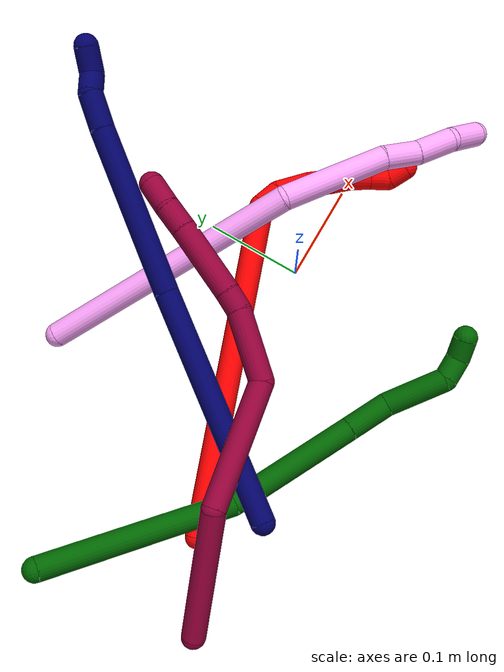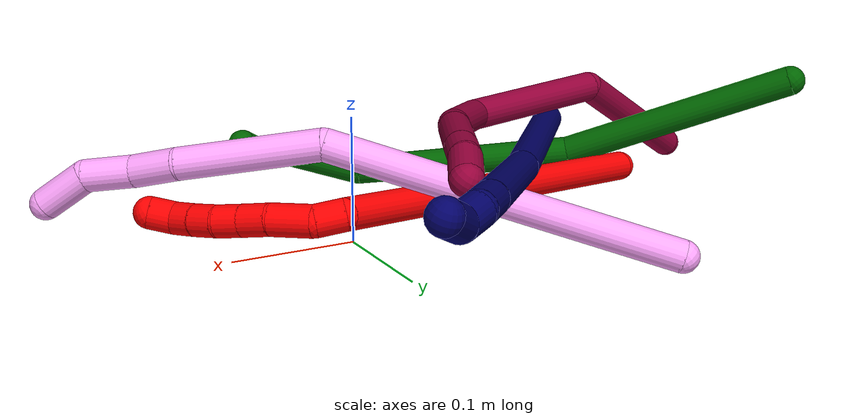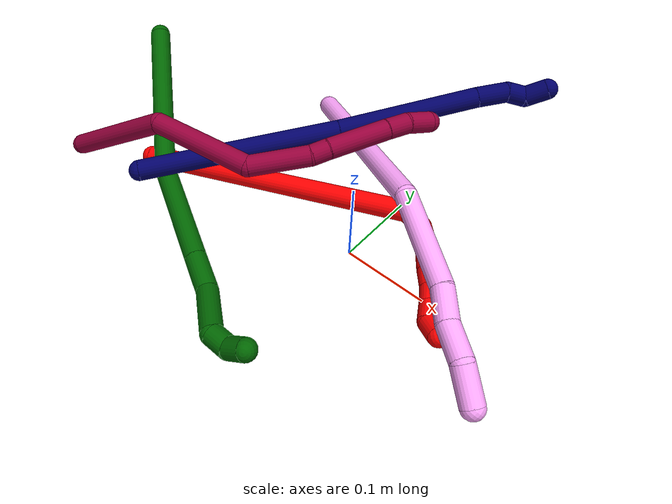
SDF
<sdf version="1.7">
 <world name="default">
  <model name="2">
   <static>0</static>
   <link name="2">
    <collision name="collision-cylinder-e_1_1_4">
     <pose>0.116093 0.066121 0.104433 -0.564434 0.754066 -0.22863</pose>
     <geometry><cylinder><radius>0.0125</radius><length>0.339151</length></cylinder></geometry>
     <surface>
      <friction><ode><mu>1.16</mu><mu2>1.16</mu2><slip1>0</slip1><slip2>0</slip2></ode></friction>
      <contact><ode><kp>1e+06</kp><kd>1</kd><max_vel>0</max_vel><min_depth>0.001</min_depth></ode></contact>
     </surface>
    </collision>
    <visual name="visual-cylinder-e_1_1_4">
     <pose>0.116093 0.066121 0.104433 -0.564434 0.754066 -0.22863</pose>
     <geometry><cylinder><radius>0.0125</radius><length>0.339151</length></cylinder></geometry>
     <material><ambient>1 0 0 1</ambient></material>
    </visual>
    <collision name="collision-cylinder-e_2_4_5">
     <pose>0.242178 0.129543 0.213977 0.486071 1.04643 0.284113</pose>
     <geometry><cylinder><radius>0.0125</radius><length>0.023086</length></cylinder></geometry>
     <surface>
      <friction><ode><mu>1.16</mu><mu2>1.16</mu2><slip1>0</slip1><slip2>0</slip2></ode></friction>
      <contact><ode><kp>1e+06</kp><kd>1</kd><max_vel>0</max_vel><min_depth>0.001</min_depth></ode></contact>
     </surface>
    </collision>
    <visual name="visual-cylinder-e_2_4_5">
     <pose>0.242178 0.129543 0.213977 0.486071 1.04643 0.284113</pose>
     <geometry><cylinder><radius>0.0125</radius><length>0.023086</length></cylinder></geometry>
     <material><ambient>1 0 0 1</ambient></material>
    </visual>
    <collision name="collision-cylinder-e_3_5_6">
     <pose>0.262906 0.11622 0.226399 0.967955 0.694199 0.375835</pose>
     <geometry><cylinder><radius>0.0125</radius><length>0.03356</length></cylinder></geometry>
     <surface>
      <friction><ode><mu>1.16</mu><mu2>1.16</mu2><slip1>0</slip1><slip2>0</slip2></ode></friction>
      <contact><ode><kp>1e+06</kp><kd>1</kd><max_vel>0</max_vel><min_depth>0.001</min_depth></ode></contact>
     </surface>
    </collision>
    <visual name="visual-cylinder-e_3_5_6">
     <pose>0.262906 0.11622 0.226399 0.967955 0.694199 0.375835</pose>
     <geometry><cylinder><radius>0.0125</radius><length>0.03356</length></cylinder></geometry>
     <material><ambient>1 0 0 1</ambient></material>
    </visual>
    <collision name="collision-cylinder-e_4_6_7">
     <pose>0.280925 0.097233 0.237087 1.18712 0.6794 0.468153</pose>
     <geometry><cylinder><radius>0.0125</radius><length>0.023186</length></cylinder></geometry>
     <surface>
      <friction><ode><mu>1.16</mu><mu2>1.16</mu2><slip1>0</slip1><slip2>0</slip2></ode></friction>
      <contact><ode><kp>1e+06</kp><kd>1</kd><max_vel>0</max_vel><min_depth>0.001</min_depth></ode></contact>
     </surface>
    </collision>
    <visual name="visual-cylinder-e_4_6_7">
     <pose>0.280925 0.097233 0.237087 1.18712 0.6794 0.468153</pose>
     <geometry><cylinder><radius>0.0125</radius><length>0.023186</length></cylinder></geometry>
     <material><ambient>1 0 0 1</ambient></material>
    </visual>
    <collision name="collision-cylinder-e_5_7_8">
     <pose>0.295036 0.081849 0.244081 1.09502 0.71272 0.446352</pose>
     <geometry><cylinder><radius>0.0125</radius><length>0.020879</length></cylinder></geometry>
     <surface>
      <friction><ode><mu>1.16</mu><mu2>1.16</mu2><slip1>0</slip1><slip2>0</slip2></ode></friction>
      <contact><ode><kp>1e+06</kp><kd>1</kd><max_vel>0</max_vel><min_depth>0.001</min_depth></ode></contact>
     </surface>
    </collision>
    <visual name="visual-cylinder-e_5_7_8">
     <pose>0.295036 0.081849 0.244081 1.09502 0.71272 0.446352</pose>
     <geometry><cylinder><radius>0.0125</radius><length>0.020879</length></cylinder></geometry>
     <material><ambient>1 0 0 1</ambient></material>
    </visual>
    <collision name="collision-cylinder-e_6_8_9">
     <pose>0.307267 0.066893 0.250591 1.22115 0.569334 0.403943</pose>
     <geometry><cylinder><radius>0.0125</radius><length>0.020055</length></cylinder></geometry>
     <surface>
      <friction><ode><mu>1.16</mu><mu2>1.16</mu2><slip1>0</slip1><slip2>0</slip2></ode></friction>
      <contact><ode><kp>1e+06</kp><kd>1</kd><max_vel>0</max_vel><min_depth>0.001</min_depth></ode></contact>
     </surface>
    </collision>
    <visual name="visual-cylinder-e_6_8_9">
     <pose>0.307267 0.066893 0.250591 1.22115 0.569334 0.403943</pose>
     <geometry><cylinder><radius>0.0125</radius><length>0.020055</length></cylinder></geometry>
     <material><ambient>1 0 0 1</ambient></material>
    </visual>
    <collision name="collision-cylinder-e_7_9_10">
     <pose>0.317571 0.050666 0.256226 1.25149 0.5111 0.373191</pose>
     <geometry><cylinder><radius>0.0125</radius><length>0.020027</length></cylinder></geometry>
     <surface>
      <friction><ode><mu>1.16</mu><mu2>1.16</mu2><slip1>0</slip1><slip2>0</slip2></ode></friction>
      <contact><ode><kp>1e+06</kp><kd>1</kd><max_vel>0</max_vel><min_depth>0.001</min_depth></ode></contact>
     </surface>
    </collision>
    <visual name="visual-cylinder-e_7_9_10">
     <pose>0.317571 0.050666 0.256226 1.25149 0.5111 0.373191</pose>
     <geometry><cylinder><radius>0.0125</radius><length>0.020027</length></cylinder></geometry>
     <material><ambient>1 0 0 1</ambient></material>
    </visual>
    <collision name="collision-cylinder-e_8_10_2">
     <pose>0.328228 0.038142 0.266003 0.541525 0.611713 0.174853</pose>
     <geometry><cylinder><radius>0.0125</radius><length>0.020055</length></cylinder></geometry>
     <surface>
      <friction><ode><mu>1.16</mu><mu2>1.16</mu2><slip1>0</slip1><slip2>0</slip2></ode></friction>
      <contact><ode><kp>1e+06</kp><kd>1</kd><max_vel>0</max_vel><min_depth>0.001</min_depth></ode></contact>
     </surface>
    </collision>
    <visual name="visual-cylinder-e_8_10_2">
     <pose>0.328228 0.038142 0.266003 0.541525 0.611713 0.174853</pose>
     <geometry><cylinder><radius>0.0125</radius><length>0.020055</length></cylinder></geometry>
     <material><ambient>1 0 0 1</ambient></material>
    </visual>
    <collision name="collision-sphere-2">
     <pose>0.333986 0.033911 0.273037 0 -0 0</pose>
     <geometry><sphere><radius>0.0125</radius></sphere></geometry>
     <surface>
      <friction><ode><mu>1.16</mu><mu2>1.16</mu2><slip1>0</slip1><slip2>0</slip2></ode></friction>
      <contact><ode><kp>1e+06</kp><kd>1</kd><max_vel>0</max_vel><min_depth>0.001</min_depth></ode></contact>
     </surface>
    </collision>
    <visual name="visual-sphere-2">
     <pose>0.333986 0.033911 0.273037 0 -0 0</pose>
     <geometry><sphere><radius>0.0125</radius></sphere></geometry>
     <material><ambient>1 0 0 1</ambient></material>
    </visual>
    <collision name="collision-sphere-10">
     <pose>0.322469 0.042374 0.258968 0 -0 0</pose>
     <geometry><sphere><radius>0.0125</radius></sphere></geometry>
     <surface>
      <friction><ode><mu>1.16</mu><mu2>1.16</mu2><slip1>0</slip1><slip2>0</slip2></ode></friction>
      <contact><ode><kp>1e+06</kp><kd>1</kd><max_vel>0</max_vel><min_depth>0.001</min_depth></ode></contact>
     </surface>
    </collision>
    <visual name="visual-sphere-10">
     <pose>0.322469 0.042374 0.258968 0 -0 0</pose>
     <geometry><sphere><radius>0.0125</radius></sphere></geometry>
     <material><ambient>1 0 0 1</ambient></material>
    </visual>
    <collision name="collision-sphere-9">
     <pose>0.312673 0.058959 0.253485 0 -0 0</pose>
     <geometry><sphere><radius>0.0125</radius></sphere></geometry>
     <surface>
      <friction><ode><mu>1.16</mu><mu2>1.16</mu2><slip1>0</slip1><slip2>0</slip2></ode></friction>
      <contact><ode><kp>1e+06</kp><kd>1</kd><max_vel>0</max_vel><min_depth>0.001</min_depth></ode></contact>
     </surface>
    </collision>
    <visual name="visual-sphere-9">
     <pose>0.312673 0.058959 0.253485 0 -0 0</pose>
     <geometry><sphere><radius>0.0125</radius></sphere></geometry>
     <material><ambient>1 0 0 1</ambient></material>
    </visual>
    <collision name="collision-sphere-4">
     <pose>0.232186 0.132243 0.208867 0 -0 0</pose>
     <geometry><sphere><radius>0.0125</radius></sphere></geometry>
     <surface>
      <friction><ode><mu>1.16</mu><mu2>1.16</mu2><slip1>0</slip1><slip2>0</slip2></ode></friction>
      <contact><ode><kp>1e+06</kp><kd>1</kd><max_vel>0</max_vel><min_depth>0.001</min_depth></ode></contact>
     </surface>
    </collision>
    <visual name="visual-sphere-4">
     <pose>0.232186 0.132243 0.208867 0 -0 0</pose>
     <geometry><sphere><radius>0.0125</radius></sphere></geometry>
     <material><ambient>1 0 0 1</ambient></material>
    </visual>
    <collision name="collision-sphere-1">
     <geometry><sphere><radius>0.0125</radius></sphere></geometry>
     <surface>
      <friction><ode><mu>1.16</mu><mu2>1.16</mu2><slip1>0</slip1><slip2>0</slip2></ode></friction>
      <contact><ode><kp>1e+06</kp><kd>1</kd><max_vel>0</max_vel><min_depth>0.001</min_depth></ode></contact>
     </surface>
    </collision>
    <visual name="visual-sphere-1">
     <geometry><sphere><radius>0.0125</radius></sphere></geometry>
     <material><ambient>1 0 0 1</ambient></material>
    </visual>
    <collision name="collision-sphere-8">
     <pose>0.301862 0.074828 0.247698 0 -0 0</pose>
     <geometry><sphere><radius>0.0125</radius></sphere></geometry>
     <surface>
      <friction><ode><mu>1.16</mu><mu2>1.16</mu2><slip1>0</slip1><slip2>0</slip2></ode></friction>
      <contact><ode><kp>1e+06</kp><kd>1</kd><max_vel>0</max_vel><min_depth>0.001</min_depth></ode></contact>
     </surface>
    </collision>
    <visual name="visual-sphere-8">
     <pose>0.301862 0.074828 0.247698 0 -0 0</pose>
     <geometry><sphere><radius>0.0125</radius></sphere></geometry>
     <material><ambient>1 0 0 1</ambient></material>
    </visual>
    <collision name="collision-sphere-5">
     <pose>0.25217 0.126843 0.219086 0 -0 0</pose>
     <geometry><sphere><radius>0.0125</radius></sphere></geometry>
     <surface>
      <friction><ode><mu>1.16</mu><mu2>1.16</mu2><slip1>0</slip1><slip2>0</slip2></ode></friction>
      <contact><ode><kp>1e+06</kp><kd>1</kd><max_vel>0</max_vel><min_depth>0.001</min_depth></ode></contact>
     </surface>
    </collision>
    <visual name="visual-sphere-5">
     <pose>0.25217 0.126843 0.219086 0 -0 0</pose>
     <geometry><sphere><radius>0.0125</radius></sphere></geometry>
     <material><ambient>1 0 0 1</ambient></material>
    </visual>
    <collision name="collision-sphere-6">
     <pose>0.273641 0.105596 0.233711 0 -0 0</pose>
     <geometry><sphere><radius>0.0125</radius></sphere></geometry>
     <surface>
      <friction><ode><mu>1.16</mu><mu2>1.16</mu2><slip1>0</slip1><slip2>0</slip2></ode></friction>
      <contact><ode><kp>1e+06</kp><kd>1</kd><max_vel>0</max_vel><min_depth>0.001</min_depth></ode></contact>
     </surface>
    </collision>
    <visual name="visual-sphere-6">
     <pose>0.273641 0.105596 0.233711 0 -0 0</pose>
     <geometry><sphere><radius>0.0125</radius></sphere></geometry>
     <material><ambient>1 0 0 1</ambient></material>
    </visual>
    <collision name="collision-sphere-7">
     <pose>0.28821 0.08887 0.240463 0 -0 0</pose>
     <geometry><sphere><radius>0.0125</radius></sphere></geometry>
     <surface>
      <friction><ode><mu>1.16</mu><mu2>1.16</mu2><slip1>0</slip1><slip2>0</slip2></ode></friction>
      <contact><ode><kp>1e+06</kp><kd>1</kd><max_vel>0</max_vel><min_depth>0.001</min_depth></ode></contact>
     </surface>
    </collision>
    <visual name="visual-sphere-7">
     <pose>0.28821 0.08887 0.240463 0 -0 0</pose>
     <geometry><sphere><radius>0.0125</radius></sphere></geometry>
     <material><ambient>1 0 0 1</ambient></material>
    </visual>
    <inertial>
     <pose>0.171131 0.072801 0.148083 0 -0 0</pose>
     <mass>0.5</mass>
     <inertia>
      <ixx>0.001818</ixx>
      <ixy>0</ixy>
      <ixz>0</ixz>
      <iyy>0.002434</iyy>
      <iyz>0</iyz>
      <izz>-0.003486</izz>
     </inertia>
    </inertial>
   </link>
   <pose>-0.28526 -0.05057 0.011489 0.027345 0.635959 -0.049201</pose>
  </model>
  <model name="4">
   <static>0</static>
   <link name="4">
    <collision name="collision-cylinder-e_1_1_4">
     <pose>0.10734 -0.066208 -0.052752 2.24356 0.903017 1.57716</pose>
     <geometry><cylinder><radius>0.0125</radius><length>0.27341</length></cylinder></geometry>
     <surface>
      <friction><ode><mu>1.16</mu><mu2>1.16</mu2><slip1>0</slip1><slip2>0</slip2></ode></friction>
      <contact><ode><kp>1e+06</kp><kd>1</kd><max_vel>0</max_vel><min_depth>0.001</min_depth></ode></contact>
     </surface>
    </collision>
    <visual name="visual-cylinder-e_1_1_4">
     <pose>0.10734 -0.066208 -0.052752 2.24356 0.903017 1.57716</pose>
     <geometry><cylinder><radius>0.0125</radius><length>0.27341</length></cylinder></geometry>
     <material><ambient>1 0.65098 0.996078 1</ambient></material>
    </visual>
    <collision name="collision-cylinder-e_2_4_5">
     <pose>0.238784 -0.169364 -0.139248 2.31091 0.448898 0.955386</pose>
     <geometry><cylinder><radius>0.0125</radius><length>0.111083</length></cylinder></geometry>
     <surface>
      <friction><ode><mu>1.16</mu><mu2>1.16</mu2><slip1>0</slip1><slip2>0</slip2></ode></friction>
      <contact><ode><kp>1e+06</kp><kd>1</kd><max_vel>0</max_vel><min_depth>0.001</min_depth></ode></contact>
     </surface>
    </collision>
    <visual name="visual-cylinder-e_2_4_5">
     <pose>0.238784 -0.169364 -0.139248 2.31091 0.448898 0.955386</pose>
     <geometry><cylinder><radius>0.0125</radius><length>0.111083</length></cylinder></geometry>
     <material><ambient>1 0.65098 0.996078 1</ambient></material>
    </visual>
    <collision name="collision-cylinder-e_3_5_6">
     <pose>0.268851 -0.221294 -0.182131 2.11847 0.327551 0.572546</pose>
     <geometry><cylinder><radius>0.0125</radius><length>0.037068</length></cylinder></geometry>
     <surface>
      <friction><ode><mu>1.16</mu><mu2>1.16</mu2><slip1>0</slip1><slip2>0</slip2></ode></friction>
      <contact><ode><kp>1e+06</kp><kd>1</kd><max_vel>0</max_vel><min_depth>0.001</min_depth></ode></contact>
     </surface>
    </collision>
    <visual name="visual-cylinder-e_3_5_6">
     <pose>0.268851 -0.221294 -0.182131 2.11847 0.327551 0.572546</pose>
     <geometry><cylinder><radius>0.0125</radius><length>0.037068</length></cylinder></geometry>
     <material><ambient>1 0.65098 0.996078 1</ambient></material>
    </visual>
    <collision name="collision-cylinder-e_4_6_7">
     <pose>0.283702 -0.249367 -0.202566 2.28276 0.474772 0.972175</pose>
     <geometry><cylinder><radius>0.0125</radius><length>0.038885</length></cylinder></geometry>
     <surface>
      <friction><ode><mu>1.16</mu><mu2>1.16</mu2><slip1>0</slip1><slip2>0</slip2></ode></friction>
      <contact><ode><kp>1e+06</kp><kd>1</kd><max_vel>0</max_vel><min_depth>0.001</min_depth></ode></contact>
     </surface>
    </collision>
    <visual name="visual-cylinder-e_4_6_7">
     <pose>0.283702 -0.249367 -0.202566 2.28276 0.474772 0.972175</pose>
     <geometry><cylinder><radius>0.0125</radius><length>0.038885</length></cylinder></geometry>
     <material><ambient>1 0.65098 0.996078 1</ambient></material>
    </visual>
    <collision name="collision-cylinder-e_5_7_2">
     <pose>0.292588 -0.275829 -0.228436 2.39919 -5.1e-05 -0.000131</pose>
     <geometry><cylinder><radius>0.0125</radius><length>0.039554</length></cylinder></geometry>
     <surface>
      <friction><ode><mu>1.16</mu><mu2>1.16</mu2><slip1>0</slip1><slip2>0</slip2></ode></friction>
      <contact><ode><kp>1e+06</kp><kd>1</kd><max_vel>0</max_vel><min_depth>0.001</min_depth></ode></contact>
     </surface>
    </collision>
    <visual name="visual-cylinder-e_5_7_2">
     <pose>0.292588 -0.275829 -0.228436 2.39919 -5.1e-05 -0.000131</pose>
     <geometry><cylinder><radius>0.0125</radius><length>0.039554</length></cylinder></geometry>
     <material><ambient>1 0.65098 0.996078 1</ambient></material>
    </visual>
    <collision name="collision-sphere-2">
     <pose>0.292587 -0.2892 -0.243009 0 -0 0</pose>
     <geometry><sphere><radius>0.0125</radius></sphere></geometry>
     <surface>
      <friction><ode><mu>1.16</mu><mu2>1.16</mu2><slip1>0</slip1><slip2>0</slip2></ode></friction>
      <contact><ode><kp>1e+06</kp><kd>1</kd><max_vel>0</max_vel><min_depth>0.001</min_depth></ode></contact>
     </surface>
    </collision>
    <visual name="visual-sphere-2">
     <pose>0.292587 -0.2892 -0.243009 0 -0 0</pose>
     <geometry><sphere><radius>0.0125</radius></sphere></geometry>
     <material><ambient>1 0.65098 0.996078 1</ambient></material>
    </visual>
    <collision name="collision-sphere-7">
     <pose>0.292589 -0.262459 -0.213863 0 -0 0</pose>
     <geometry><sphere><radius>0.0125</radius></sphere></geometry>
     <surface>
      <friction><ode><mu>1.16</mu><mu2>1.16</mu2><slip1>0</slip1><slip2>0</slip2></ode></friction>
      <contact><ode><kp>1e+06</kp><kd>1</kd><max_vel>0</max_vel><min_depth>0.001</min_depth></ode></contact>
     </surface>
    </collision>
    <visual name="visual-sphere-7">
     <pose>0.292589 -0.262459 -0.213863 0 -0 0</pose>
     <geometry><sphere><radius>0.0125</radius></sphere></geometry>
     <material><ambient>1 0.65098 0.996078 1</ambient></material>
    </visual>
    <collision name="collision-sphere-6">
     <pose>0.274814 -0.236276 -0.191268 0 -0 0</pose>
     <geometry><sphere><radius>0.0125</radius></sphere></geometry>
     <surface>
      <friction><ode><mu>1.16</mu><mu2>1.16</mu2><slip1>0</slip1><slip2>0</slip2></ode></friction>
      <contact><ode><kp>1e+06</kp><kd>1</kd><max_vel>0</max_vel><min_depth>0.001</min_depth></ode></contact>
     </surface>
    </collision>
    <visual name="visual-sphere-6">
     <pose>0.274814 -0.236276 -0.191268 0 -0 0</pose>
     <geometry><sphere><radius>0.0125</radius></sphere></geometry>
     <material><ambient>1 0.65098 0.996078 1</ambient></material>
    </visual>
    <collision name="collision-sphere-5">
     <pose>0.262888 -0.206312 -0.172993 0 -0 0</pose>
     <geometry><sphere><radius>0.0125</radius></sphere></geometry>
     <surface>
      <friction><ode><mu>1.16</mu><mu2>1.16</mu2><slip1>0</slip1><slip2>0</slip2></ode></friction>
      <contact><ode><kp>1e+06</kp><kd>1</kd><max_vel>0</max_vel><min_depth>0.001</min_depth></ode></contact>
     </surface>
    </collision>
    <visual name="visual-sphere-5">
     <pose>0.262888 -0.206312 -0.172993 0 -0 0</pose>
     <geometry><sphere><radius>0.0125</radius></sphere></geometry>
     <material><ambient>1 0.65098 0.996078 1</ambient></material>
    </visual>
    <collision name="collision-sphere-1">
     <geometry><sphere><radius>0.0125</radius></sphere></geometry>
     <surface>
      <friction><ode><mu>1.16</mu><mu2>1.16</mu2><slip1>0</slip1><slip2>0</slip2></ode></friction>
      <contact><ode><kp>1e+06</kp><kd>1</kd><max_vel>0</max_vel><min_depth>0.001</min_depth></ode></contact>
     </surface>
    </collision>
    <visual name="visual-sphere-1">
     <geometry><sphere><radius>0.0125</radius></sphere></geometry>
     <material><ambient>1 0.65098 0.996078 1</ambient></material>
    </visual>
    <collision name="collision-sphere-4">
     <pose>0.214681 -0.132416 -0.105504 0 -0 0</pose>
     <geometry><sphere><radius>0.0125</radius></sphere></geometry>
     <surface>
      <friction><ode><mu>1.16</mu><mu2>1.16</mu2><slip1>0</slip1><slip2>0</slip2></ode></friction>
      <contact><ode><kp>1e+06</kp><kd>1</kd><max_vel>0</max_vel><min_depth>0.001</min_depth></ode></contact>
     </surface>
    </collision>
    <visual name="visual-sphere-4">
     <pose>0.214681 -0.132416 -0.105504 0 -0 0</pose>
     <geometry><sphere><radius>0.0125</radius></sphere></geometry>
     <material><ambient>1 0.65098 0.996078 1</ambient></material>
    </visual>
    <inertial>
     <pose>0.176887 -0.13145 -0.107109 0 -0 0</pose>
     <mass>0.5</mass>
     <inertia>
      <ixx>0.001248</ixx>
      <ixy>0</ixy>
      <ixz>0</ixz>
      <iyy>0.002171</iyy>
      <iyz>0</iyz>
      <izz>-0.000499</izz>
     </inertia>
    </inertial>
   </link>
   <pose>-0.181424 0.177956 0.013205 0.521555 -0.934423 -0.323127</pose>
  </model>
  <model name="6">
   <static>0</static>
   <link name="6">
    <collision name="collision-cylinder-e_1_1_4">
     <pose>0.069162 -0.061053 0.040607 0.983869 0.756198 0.419451</pose>
     <geometry><cylinder><radius>0.0125</radius><length>0.201592</length></cylinder></geometry>
     <surface>
      <friction><ode><mu>1.16</mu><mu2>1.16</mu2><slip1>0</slip1><slip2>0</slip2></ode></friction>
      <contact><ode><kp>1e+06</kp><kd>1</kd><max_vel>0</max_vel><min_depth>0.001</min_depth></ode></contact>
     </surface>
    </collision>
    <visual name="visual-cylinder-e_1_1_4">
     <pose>0.069162 -0.061053 0.040607 0.983869 0.756198 0.419451</pose>
     <geometry><cylinder><radius>0.0125</radius><length>0.201592</length></cylinder></geometry>
     <material><ambient>0 0.392157 0.003922 1</ambient></material>
    </visual>
    <collision name="collision-cylinder-e_2_4_5">
     <pose>0.192009 -0.142121 0.120599 0.470176 0.882236 0.225218</pose>
     <geometry><cylinder><radius>0.0125</radius><length>0.13905</length></cylinder></geometry>
     <surface>
      <friction><ode><mu>1.16</mu><mu2>1.16</mu2><slip1>0</slip1><slip2>0</slip2></ode></friction>
      <contact><ode><kp>1e+06</kp><kd>1</kd><max_vel>0</max_vel><min_depth>0.001</min_depth></ode></contact>
     </surface>
    </collision>
    <visual name="visual-cylinder-e_2_4_5">
     <pose>0.192009 -0.142121 0.120599 0.470176 0.882236 0.225218</pose>
     <geometry><cylinder><radius>0.0125</radius><length>0.13905</length></cylinder></geometry>
     <material><ambient>0 0.392157 0.003922 1</ambient></material>
    </visual>
    <collision name="collision-cylinder-e_3_5_6">
     <pose>0.263452 -0.168478 0.173335 0.44347 0.876602 0.210551</pose>
     <geometry><cylinder><radius>0.0125</radius><length>0.046211</length></cylinder></geometry>
     <surface>
      <friction><ode><mu>1.16</mu><mu2>1.16</mu2><slip1>0</slip1><slip2>0</slip2></ode></friction>
      <contact><ode><kp>1e+06</kp><kd>1</kd><max_vel>0</max_vel><min_depth>0.001</min_depth></ode></contact>
     </surface>
    </collision>
    <visual name="visual-cylinder-e_3_5_6">
     <pose>0.263452 -0.168478 0.173335 0.44347 0.876602 0.210551</pose>
     <geometry><cylinder><radius>0.0125</radius><length>0.046211</length></cylinder></geometry>
     <material><ambient>0 0.392157 0.003922 1</ambient></material>
    </visual>
    <collision name="collision-cylinder-e_4_6_7">
     <pose>0.298412 -0.182414 0.213093 0.280007 0.559371 0.080907</pose>
     <geometry><cylinder><radius>0.0125</radius><length>0.064832</length></cylinder></geometry>
     <surface>
      <friction><ode><mu>1.16</mu><mu2>1.16</mu2><slip1>0</slip1><slip2>0</slip2></ode></friction>
      <contact><ode><kp>1e+06</kp><kd>1</kd><max_vel>0</max_vel><min_depth>0.001</min_depth></ode></contact>
     </surface>
    </collision>
    <visual name="visual-cylinder-e_4_6_7">
     <pose>0.298412 -0.182414 0.213093 0.280007 0.559371 0.080907</pose>
     <geometry><cylinder><radius>0.0125</radius><length>0.064832</length></cylinder></geometry>
     <material><ambient>0 0.392157 0.003922 1</ambient></material>
    </visual>
    <collision name="collision-cylinder-e_5_7_8">
     <pose>0.326549 -0.188284 0.244891 -0.309258 1.0931 -0.189092</pose>
     <geometry><cylinder><radius>0.0125</radius><length>0.024626</length></cylinder></geometry>
     <surface>
      <friction><ode><mu>1.16</mu><mu2>1.16</mu2><slip1>0</slip1><slip2>0</slip2></ode></friction>
      <contact><ode><kp>1e+06</kp><kd>1</kd><max_vel>0</max_vel><min_depth>0.001</min_depth></ode></contact>
     </surface>
    </collision>
    <visual name="visual-cylinder-e_5_7_8">
     <pose>0.326549 -0.188284 0.244891 -0.309258 1.0931 -0.189092</pose>
     <geometry><cylinder><radius>0.0125</radius><length>0.024626</length></cylinder></geometry>
     <material><ambient>0 0.392157 0.003922 1</ambient></material>
    </visual>
    <collision name="collision-cylinder-e_6_8_2">
     <pose>0.344257 -0.179725 0.257187 -0.780479 0.608818 -0.257037</pose>
     <geometry><cylinder><radius>0.0125</radius><length>0.023688</length></cylinder></geometry>
     <surface>
      <friction><ode><mu>1.16</mu><mu2>1.16</mu2><slip1>0</slip1><slip2>0</slip2></ode></friction>
      <contact><ode><kp>1e+06</kp><kd>1</kd><max_vel>0</max_vel><min_depth>0.001</min_depth></ode></contact>
     </surface>
    </collision>
    <visual name="visual-cylinder-e_6_8_2">
     <pose>0.344257 -0.179725 0.257187 -0.780479 0.608818 -0.257037</pose>
     <geometry><cylinder><radius>0.0125</radius><length>0.023688</length></cylinder></geometry>
     <material><ambient>0 0.392157 0.003922 1</ambient></material>
    </visual>
    <collision name="collision-sphere-2">
     <pose>0.351031 -0.172889 0.264091 0 -0 0</pose>
     <geometry><sphere><radius>0.0125</radius></sphere></geometry>
     <surface>
      <friction><ode><mu>1.16</mu><mu2>1.16</mu2><slip1>0</slip1><slip2>0</slip2></ode></friction>
      <contact><ode><kp>1e+06</kp><kd>1</kd><max_vel>0</max_vel><min_depth>0.001</min_depth></ode></contact>
     </surface>
    </collision>
    <visual name="visual-sphere-2">
     <pose>0.351031 -0.172889 0.264091 0 -0 0</pose>
     <geometry><sphere><radius>0.0125</radius></sphere></geometry>
     <material><ambient>0 0.392157 0.003922 1</ambient></material>
    </visual>
    <collision name="collision-sphere-4">
     <pose>0.138325 -0.122106 0.081214 0 -0 0</pose>
     <geometry><sphere><radius>0.0125</radius></sphere></geometry>
     <surface>
      <friction><ode><mu>1.16</mu><mu2>1.16</mu2><slip1>0</slip1><slip2>0</slip2></ode></friction>
      <contact><ode><kp>1e+06</kp><kd>1</kd><max_vel>0</max_vel><min_depth>0.001</min_depth></ode></contact>
     </surface>
    </collision>
    <visual name="visual-sphere-4">
     <pose>0.138325 -0.122106 0.081214 0 -0 0</pose>
     <geometry><sphere><radius>0.0125</radius></sphere></geometry>
     <material><ambient>0 0.392157 0.003922 1</ambient></material>
    </visual>
    <collision name="collision-sphere-1">
     <geometry><sphere><radius>0.0125</radius></sphere></geometry>
     <surface>
      <friction><ode><mu>1.16</mu><mu2>1.16</mu2><slip1>0</slip1><slip2>0</slip2></ode></friction>
      <contact><ode><kp>1e+06</kp><kd>1</kd><max_vel>0</max_vel><min_depth>0.001</min_depth></ode></contact>
     </surface>
    </collision>
    <visual name="visual-sphere-1">
     <geometry><sphere><radius>0.0125</radius></sphere></geometry>
     <material><ambient>0 0.392157 0.003922 1</ambient></material>
    </visual>
    <collision name="collision-sphere-8">
     <pose>0.337484 -0.186561 0.250283 0 -0 0</pose>
     <geometry><sphere><radius>0.0125</radius></sphere></geometry>
     <surface>
      <friction><ode><mu>1.16</mu><mu2>1.16</mu2><slip1>0</slip1><slip2>0</slip2></ode></friction>
      <contact><ode><kp>1e+06</kp><kd>1</kd><max_vel>0</max_vel><min_depth>0.001</min_depth></ode></contact>
     </surface>
    </collision>
    <visual name="visual-sphere-8">
     <pose>0.337484 -0.186561 0.250283 0 -0 0</pose>
     <geometry><sphere><radius>0.0125</radius></sphere></geometry>
     <material><ambient>0 0.392157 0.003922 1</ambient></material>
    </visual>
    <collision name="collision-sphere-5">
     <pose>0.245694 -0.162135 0.159983 0 -0 0</pose>
     <geometry><sphere><radius>0.0125</radius></sphere></geometry>
     <surface>
      <friction><ode><mu>1.16</mu><mu2>1.16</mu2><slip1>0</slip1><slip2>0</slip2></ode></friction>
      <contact><ode><kp>1e+06</kp><kd>1</kd><max_vel>0</max_vel><min_depth>0.001</min_depth></ode></contact>
     </surface>
    </collision>
    <visual name="visual-sphere-5">
     <pose>0.245694 -0.162135 0.159983 0 -0 0</pose>
     <geometry><sphere><radius>0.0125</radius></sphere></geometry>
     <material><ambient>0 0.392157 0.003922 1</ambient></material>
    </visual>
    <collision name="collision-sphere-6">
     <pose>0.281211 -0.174821 0.186688 0 -0 0</pose>
     <geometry><sphere><radius>0.0125</radius></sphere></geometry>
     <surface>
      <friction><ode><mu>1.16</mu><mu2>1.16</mu2><slip1>0</slip1><slip2>0</slip2></ode></friction>
      <contact><ode><kp>1e+06</kp><kd>1</kd><max_vel>0</max_vel><min_depth>0.001</min_depth></ode></contact>
     </surface>
    </collision>
    <visual name="visual-sphere-6">
     <pose>0.281211 -0.174821 0.186688 0 -0 0</pose>
     <geometry><sphere><radius>0.0125</radius></sphere></geometry>
     <material><ambient>0 0.392157 0.003922 1</ambient></material>
    </visual>
    <collision name="collision-sphere-7">
     <pose>0.315614 -0.190007 0.239499 0 -0 0</pose>
     <geometry><sphere><radius>0.0125</radius></sphere></geometry>
     <surface>
      <friction><ode><mu>1.16</mu><mu2>1.16</mu2><slip1>0</slip1><slip2>0</slip2></ode></friction>
      <contact><ode><kp>1e+06</kp><kd>1</kd><max_vel>0</max_vel><min_depth>0.001</min_depth></ode></contact>
     </surface>
    </collision>
    <visual name="visual-sphere-7">
     <pose>0.315614 -0.190007 0.239499 0 -0 0</pose>
     <geometry><sphere><radius>0.0125</radius></sphere></geometry>
     <material><ambient>0 0.392157 0.003922 1</ambient></material>
    </visual>
    <inertial>
     <pose>0.176718 -0.121151 0.117807 0 -0 0</pose>
     <mass>0.5</mass>
     <inertia>
      <ixx>0.000898</ixx>
      <ixy>0</ixy>
      <ixz>0</ixz>
      <iyy>0.000991</iyy>
      <iyz>0</iyz>
      <izz>-0.000163</izz>
     </inertia>
    </inertial>
   </link>
   <pose>-0.380191 0.058529 0.100299 0.719765 0.409127 0.161941</pose>
  </model>
  <model name="7">
   <static>0</static>
   <link name="7">
    <collision name="collision-cylinder-e_1_1_4">
     <pose>0.082619 0.085179 0.024942 -1.28594 0.749604 -0.573214</pose>
     <geometry><cylinder><radius>0.0125</radius><length>0.242516</length></cylinder></geometry>
     <surface>
      <friction><ode><mu>1.16</mu><mu2>1.16</mu2><slip1>0</slip1><slip2>0</slip2></ode></friction>
      <contact><ode><kp>1e+06</kp><kd>1</kd><max_vel>0</max_vel><min_depth>0.001</min_depth></ode></contact>
     </surface>
    </collision>
    <visual name="visual-cylinder-e_1_1_4">
     <pose>0.082619 0.085179 0.024942 -1.28594 0.749604 -0.573214</pose>
     <geometry><cylinder><radius>0.0125</radius><length>0.242516</length></cylinder></geometry>
     <material><ambient>0.003922 0 0.403922 1</ambient></material>
    </visual>
    <collision name="collision-cylinder-e_2_4_5">
     <pose>0.225341 0.227039 0.071954 -1.19949 0.779416 -0.547558</pose>
     <geometry><cylinder><radius>0.0125</radius><length>0.171023</length></cylinder></geometry>
     <surface>
      <friction><ode><mu>1.16</mu><mu2>1.16</mu2><slip1>0</slip1><slip2>0</slip2></ode></friction>
      <contact><ode><kp>1e+06</kp><kd>1</kd><max_vel>0</max_vel><min_depth>0.001</min_depth></ode></contact>
     </surface>
    </collision>
    <visual name="visual-cylinder-e_2_4_5">
     <pose>0.225341 0.227039 0.071954 -1.19949 0.779416 -0.547558</pose>
     <geometry><cylinder><radius>0.0125</radius><length>0.171023</length></cylinder></geometry>
     <material><ambient>0.003922 0 0.403922 1</ambient></material>
    </visual>
    <collision name="collision-cylinder-e_3_5_6">
     <pose>0.299325 0.295855 0.097991 -1.25483 0.827189 -0.616291</pose>
     <geometry><cylinder><radius>0.0125</radius><length>0.037719</length></cylinder></geometry>
     <surface>
      <friction><ode><mu>1.16</mu><mu2>1.16</mu2><slip1>0</slip1><slip2>0</slip2></ode></friction>
      <contact><ode><kp>1e+06</kp><kd>1</kd><max_vel>0</max_vel><min_depth>0.001</min_depth></ode></contact>
     </surface>
    </collision>
    <visual name="visual-cylinder-e_3_5_6">
     <pose>0.299325 0.295855 0.097991 -1.25483 0.827189 -0.616291</pose>
     <geometry><cylinder><radius>0.0125</radius><length>0.037719</length></cylinder></geometry>
     <material><ambient>0.003922 0 0.403922 1</ambient></material>
    </visual>
    <collision name="collision-cylinder-e_4_6_7">
     <pose>0.322641 0.313044 0.100142 -1.91582 1.05339 -1.38184</pose>
     <geometry><cylinder><radius>0.0125</radius><length>0.021712</length></cylinder></geometry>
     <surface>
      <friction><ode><mu>1.16</mu><mu2>1.16</mu2><slip1>0</slip1><slip2>0</slip2></ode></friction>
      <contact><ode><kp>1e+06</kp><kd>1</kd><max_vel>0</max_vel><min_depth>0.001</min_depth></ode></contact>
     </surface>
    </collision>
    <visual name="visual-cylinder-e_4_6_7">
     <pose>0.322641 0.313044 0.100142 -1.91582 1.05339 -1.38184</pose>
     <geometry><cylinder><radius>0.0125</radius><length>0.021712</length></cylinder></geometry>
     <material><ambient>0.003922 0 0.403922 1</ambient></material>
    </visual>
    <collision name="collision-cylinder-e_5_7_2">
     <pose>0.342949 0.323497 0.104266 -0.737817 0.934744 -0.385373</pose>
     <geometry><cylinder><radius>0.0125</radius><length>0.02703</length></cylinder></geometry>
     <surface>
      <friction><ode><mu>1.16</mu><mu2>1.16</mu2><slip1>0</slip1><slip2>0</slip2></ode></friction>
      <contact><ode><kp>1e+06</kp><kd>1</kd><max_vel>0</max_vel><min_depth>0.001</min_depth></ode></contact>
     </surface>
    </collision>
    <visual name="visual-cylinder-e_5_7_2">
     <pose>0.342949 0.323497 0.104266 -0.737817 0.934744 -0.385373</pose>
     <geometry><cylinder><radius>0.0125</radius><length>0.02703</length></cylinder></geometry>
     <material><ambient>0.003922 0 0.403922 1</ambient></material>
    </visual>
    <collision name="collision-sphere-2">
     <pose>0.353821 0.328898 0.110207 0 -0 0</pose>
     <geometry><sphere><radius>0.0125</radius></sphere></geometry>
     <surface>
      <friction><ode><mu>1.16</mu><mu2>1.16</mu2><slip1>0</slip1><slip2>0</slip2></ode></friction>
      <contact><ode><kp>1e+06</kp><kd>1</kd><max_vel>0</max_vel><min_depth>0.001</min_depth></ode></contact>
     </surface>
    </collision>
    <visual name="visual-sphere-2">
     <pose>0.353821 0.328898 0.110207 0 -0 0</pose>
     <geometry><sphere><radius>0.0125</radius></sphere></geometry>
     <material><ambient>0.003922 0 0.403922 1</ambient></material>
    </visual>
    <collision name="collision-sphere-7">
     <pose>0.332077 0.318097 0.098326 0 -0 0</pose>
     <geometry><sphere><radius>0.0125</radius></sphere></geometry>
     <surface>
      <friction><ode><mu>1.16</mu><mu2>1.16</mu2><slip1>0</slip1><slip2>0</slip2></ode></friction>
      <contact><ode><kp>1e+06</kp><kd>1</kd><max_vel>0</max_vel><min_depth>0.001</min_depth></ode></contact>
     </surface>
    </collision>
    <visual name="visual-sphere-7">
     <pose>0.332077 0.318097 0.098326 0 -0 0</pose>
     <geometry><sphere><radius>0.0125</radius></sphere></geometry>
     <material><ambient>0.003922 0 0.403922 1</ambient></material>
    </visual>
    <collision name="collision-sphere-6">
     <pose>0.313206 0.30799 0.101958 0 -0 0</pose>
     <geometry><sphere><radius>0.0125</radius></sphere></geometry>
     <surface>
      <friction><ode><mu>1.16</mu><mu2>1.16</mu2><slip1>0</slip1><slip2>0</slip2></ode></friction>
      <contact><ode><kp>1e+06</kp><kd>1</kd><max_vel>0</max_vel><min_depth>0.001</min_depth></ode></contact>
     </surface>
    </collision>
    <visual name="visual-sphere-6">
     <pose>0.313206 0.30799 0.101958 0 -0 0</pose>
     <geometry><sphere><radius>0.0125</radius></sphere></geometry>
     <material><ambient>0.003922 0 0.403922 1</ambient></material>
    </visual>
    <collision name="collision-sphere-5">
     <pose>0.285444 0.28372 0.094024 0 -0 0</pose>
     <geometry><sphere><radius>0.0125</radius></sphere></geometry>
     <surface>
      <friction><ode><mu>1.16</mu><mu2>1.16</mu2><slip1>0</slip1><slip2>0</slip2></ode></friction>
      <contact><ode><kp>1e+06</kp><kd>1</kd><max_vel>0</max_vel><min_depth>0.001</min_depth></ode></contact>
     </surface>
    </collision>
    <visual name="visual-sphere-5">
     <pose>0.285444 0.28372 0.094024 0 -0 0</pose>
     <geometry><sphere><radius>0.0125</radius></sphere></geometry>
     <material><ambient>0.003922 0 0.403922 1</ambient></material>
    </visual>
    <collision name="collision-sphere-1">
     <geometry><sphere><radius>0.0125</radius></sphere></geometry>
     <surface>
      <friction><ode><mu>1.16</mu><mu2>1.16</mu2><slip1>0</slip1><slip2>0</slip2></ode></friction>
      <contact><ode><kp>1e+06</kp><kd>1</kd><max_vel>0</max_vel><min_depth>0.001</min_depth></ode></contact>
     </surface>
    </collision>
    <visual name="visual-sphere-1">
     <geometry><sphere><radius>0.0125</radius></sphere></geometry>
     <material><ambient>0.003922 0 0.403922 1</ambient></material>
    </visual>
    <collision name="collision-sphere-4">
     <pose>0.165238 0.170358 0.049885 0 -0 0</pose>
     <geometry><sphere><radius>0.0125</radius></sphere></geometry>
     <surface>
      <friction><ode><mu>1.16</mu><mu2>1.16</mu2><slip1>0</slip1><slip2>0</slip2></ode></friction>
      <contact><ode><kp>1e+06</kp><kd>1</kd><max_vel>0</max_vel><min_depth>0.001</min_depth></ode></contact>
     </surface>
    </collision>
    <visual name="visual-sphere-4">
     <pose>0.165238 0.170358 0.049885 0 -0 0</pose>
     <geometry><sphere><radius>0.0125</radius></sphere></geometry>
     <material><ambient>0.003922 0 0.403922 1</ambient></material>
    </visual>
    <inertial>
     <pose>0.172281 0.172373 0.054087 0 -0 0</pose>
     <mass>0.5</mass>
     <inertia>
      <ixx>0.00039</ixx>
      <ixy>0</ixy>
      <ixz>0</ixz>
      <iyy>0.00038</iyy>
      <iyz>0</iyz>
      <izz>-0.002241</izz>
     </inertia>
    </inertial>
   </link>
   <pose>-0.240276 -0.100425 0.04935 -0.323457 -0.172427 0.102035</pose>
  </model>
  <model name="8">
   <static>0</static>
   <link name="8">
    <collision name="collision-cylinder-e_1_1_4">
     <pose>0.069745 0.01048 0.019108 -0.501639 1.26794 -0.37238</pose>
     <geometry><cylinder><radius>0.0125</radius><length>0.146141</length></cylinder></geometry>
     <surface>
      <friction><ode><mu>1.16</mu><mu2>1.16</mu2><slip1>0</slip1><slip2>0</slip2></ode></friction>
      <contact><ode><kp>1e+06</kp><kd>1</kd><max_vel>0</max_vel><min_depth>0.001</min_depth></ode></contact>
     </surface>
    </collision>
    <visual name="visual-cylinder-e_1_1_4">
     <pose>0.069745 0.01048 0.019108 -0.501639 1.26794 -0.37238</pose>
     <geometry><cylinder><radius>0.0125</radius><length>0.146141</length></cylinder></geometry>
     <material><ambient>0.584314 0 0.227451 1</ambient></material>
    </visual>
    <collision name="collision-cylinder-e_2_4_5">
     <pose>0.197798 0.039169 0.017791 -2.41351 1.132 -2.06117</pose>
     <geometry><cylinder><radius>0.0125</radius><length>0.12882</length></cylinder></geometry>
     <surface>
      <friction><ode><mu>1.16</mu><mu2>1.16</mu2><slip1>0</slip1><slip2>0</slip2></ode></friction>
      <contact><ode><kp>1e+06</kp><kd>1</kd><max_vel>0</max_vel><min_depth>0.001</min_depth></ode></contact>
     </surface>
    </collision>
    <visual name="visual-cylinder-e_2_4_5">
     <pose>0.197798 0.039169 0.017791 -2.41351 1.132 -2.06117</pose>
     <geometry><cylinder><radius>0.0125</radius><length>0.12882</length></cylinder></geometry>
     <material><ambient>0.584314 0 0.227451 1</ambient></material>
    </visual>
    <collision name="collision-cylinder-e_3_5_6">
     <pose>0.281487 0.08233 0.003809 -1.31803 0.777769 -0.61462</pose>
     <geometry><cylinder><radius>0.0125</radius><length>0.07234</length></cylinder></geometry>
     <surface>
      <friction><ode><mu>1.16</mu><mu2>1.16</mu2><slip1>0</slip1><slip2>0</slip2></ode></friction>
      <contact><ode><kp>1e+06</kp><kd>1</kd><max_vel>0</max_vel><min_depth>0.001</min_depth></ode></contact>
     </surface>
    </collision>
    <visual name="visual-cylinder-e_3_5_6">
     <pose>0.281487 0.08233 0.003809 -1.31803 0.777769 -0.61462</pose>
     <geometry><cylinder><radius>0.0125</radius><length>0.07234</length></cylinder></geometry>
     <material><ambient>0.584314 0 0.227451 1</ambient></material>
    </visual>
    <collision name="collision-cylinder-e_4_6_7">
     <pose>0.312364 0.115509 0.013728 -1.17121 0.551778 -0.371198</pose>
     <geometry><cylinder><radius>0.0125</radius><length>0.020974</length></cylinder></geometry>
     <surface>
      <friction><ode><mu>1.16</mu><mu2>1.16</mu2><slip1>0</slip1><slip2>0</slip2></ode></friction>
      <contact><ode><kp>1e+06</kp><kd>1</kd><max_vel>0</max_vel><min_depth>0.001</min_depth></ode></contact>
     </surface>
    </collision>
    <visual name="visual-cylinder-e_4_6_7">
     <pose>0.312364 0.115509 0.013728 -1.17121 0.551778 -0.371198</pose>
     <geometry><cylinder><radius>0.0125</radius><length>0.020974</length></cylinder></geometry>
     <material><ambient>0.584314 0 0.227451 1</ambient></material>
    </visual>
    <collision name="collision-cylinder-e_5_7_8">
     <pose>0.334962 0.154861 0.027491 -1.25155 0.480814 -0.350682</pose>
     <geometry><cylinder><radius>0.0125</radius><length>0.073948</length></cylinder></geometry>
     <surface>
      <friction><ode><mu>1.16</mu><mu2>1.16</mu2><slip1>0</slip1><slip2>0</slip2></ode></friction>
      <contact><ode><kp>1e+06</kp><kd>1</kd><max_vel>0</max_vel><min_depth>0.001</min_depth></ode></contact>
     </surface>
    </collision>
    <visual name="visual-cylinder-e_5_7_8">
     <pose>0.334962 0.154861 0.027491 -1.25155 0.480814 -0.350682</pose>
     <geometry><cylinder><radius>0.0125</radius><length>0.073948</length></cylinder></geometry>
     <material><ambient>0.584314 0 0.227451 1</ambient></material>
    </visual>
    <collision name="collision-cylinder-e_6_8_9">
     <pose>0.357764 0.197968 0.041032 -1.30573 0.430473 -0.331313</pose>
     <geometry><cylinder><radius>0.0125</radius><length>0.027322</length></cylinder></geometry>
     <surface>
      <friction><ode><mu>1.16</mu><mu2>1.16</mu2><slip1>0</slip1><slip2>0</slip2></ode></friction>
      <contact><ode><kp>1e+06</kp><kd>1</kd><max_vel>0</max_vel><min_depth>0.001</min_depth></ode></contact>
     </surface>
    </collision>
    <visual name="visual-cylinder-e_6_8_9">
     <pose>0.357764 0.197968 0.041032 -1.30573 0.430473 -0.331313</pose>
     <geometry><cylinder><radius>0.0125</radius><length>0.027322</length></cylinder></geometry>
     <material><ambient>0.584314 0 0.227451 1</ambient></material>
    </visual>
    <collision name="collision-cylinder-e_7_9_2">
     <pose>0.369172 0.224064 0.044522 -1.55392 0.384234 -0.377959</pose>
     <geometry><cylinder><radius>0.0125</radius><length>0.030454</length></cylinder></geometry>
     <surface>
      <friction><ode><mu>1.16</mu><mu2>1.16</mu2><slip1>0</slip1><slip2>0</slip2></ode></friction>
      <contact><ode><kp>1e+06</kp><kd>1</kd><max_vel>0</max_vel><min_depth>0.001</min_depth></ode></contact>
     </surface>
    </collision>
    <visual name="visual-cylinder-e_7_9_2">
     <pose>0.369172 0.224064 0.044522 -1.55392 0.384234 -0.377959</pose>
     <geometry><cylinder><radius>0.0125</radius><length>0.030454</length></cylinder></geometry>
     <material><ambient>0.584314 0 0.227451 1</ambient></material>
    </visual>
    <collision name="collision-sphere-2">
     <pose>0.37488 0.238178 0.044761 0 -0 0</pose>
     <geometry><sphere><radius>0.0125</radius></sphere></geometry>
     <surface>
      <friction><ode><mu>1.16</mu><mu2>1.16</mu2><slip1>0</slip1><slip2>0</slip2></ode></friction>
      <contact><ode><kp>1e+06</kp><kd>1</kd><max_vel>0</max_vel><min_depth>0.001</min_depth></ode></contact>
     </surface>
    </collision>
    <visual name="visual-sphere-2">
     <pose>0.37488 0.238178 0.044761 0 -0 0</pose>
     <geometry><sphere><radius>0.0125</radius></sphere></geometry>
     <material><ambient>0.584314 0 0.227451 1</ambient></material>
    </visual>
    <collision name="collision-sphere-9">
     <pose>0.363464 0.209949 0.044284 0 -0 0</pose>
     <geometry><sphere><radius>0.0125</radius></sphere></geometry>
     <surface>
      <friction><ode><mu>1.16</mu><mu2>1.16</mu2><slip1>0</slip1><slip2>0</slip2></ode></friction>
      <contact><ode><kp>1e+06</kp><kd>1</kd><max_vel>0</max_vel><min_depth>0.001</min_depth></ode></contact>
     </surface>
    </collision>
    <visual name="visual-sphere-9">
     <pose>0.363464 0.209949 0.044284 0 -0 0</pose>
     <geometry><sphere><radius>0.0125</radius></sphere></geometry>
     <material><ambient>0.584314 0 0.227451 1</ambient></material>
    </visual>
    <collision name="collision-sphere-4">
     <pose>0.13949 0.020959 0.038217 0 -0 0</pose>
     <geometry><sphere><radius>0.0125</radius></sphere></geometry>
     <surface>
      <friction><ode><mu>1.16</mu><mu2>1.16</mu2><slip1>0</slip1><slip2>0</slip2></ode></friction>
      <contact><ode><kp>1e+06</kp><kd>1</kd><max_vel>0</max_vel><min_depth>0.001</min_depth></ode></contact>
     </surface>
    </collision>
    <visual name="visual-sphere-4">
     <pose>0.13949 0.020959 0.038217 0 -0 0</pose>
     <geometry><sphere><radius>0.0125</radius></sphere></geometry>
     <material><ambient>0.584314 0 0.227451 1</ambient></material>
    </visual>
    <collision name="collision-sphere-1">
     <geometry><sphere><radius>0.0125</radius></sphere></geometry>
     <surface>
      <friction><ode><mu>1.16</mu><mu2>1.16</mu2><slip1>0</slip1><slip2>0</slip2></ode></friction>
      <contact><ode><kp>1e+06</kp><kd>1</kd><max_vel>0</max_vel><min_depth>0.001</min_depth></ode></contact>
     </surface>
    </collision>
    <visual name="visual-sphere-1">
     <geometry><sphere><radius>0.0125</radius></sphere></geometry>
     <material><ambient>0.584314 0 0.227451 1</ambient></material>
    </visual>
    <collision name="collision-sphere-8">
     <pose>0.352063 0.185987 0.037779 0 -0 0</pose>
     <geometry><sphere><radius>0.0125</radius></sphere></geometry>
     <surface>
      <friction><ode><mu>1.16</mu><mu2>1.16</mu2><slip1>0</slip1><slip2>0</slip2></ode></friction>
      <contact><ode><kp>1e+06</kp><kd>1</kd><max_vel>0</max_vel><min_depth>0.001</min_depth></ode></contact>
     </surface>
    </collision>
    <visual name="visual-sphere-8">
     <pose>0.352063 0.185987 0.037779 0 -0 0</pose>
     <geometry><sphere><radius>0.0125</radius></sphere></geometry>
     <material><ambient>0.584314 0 0.227451 1</ambient></material>
    </visual>
    <collision name="collision-sphere-5">
     <pose>0.256107 0.057378 -0.002636 0 -0 0</pose>
     <geometry><sphere><radius>0.0125</radius></sphere></geometry>
     <surface>
      <friction><ode><mu>1.16</mu><mu2>1.16</mu2><slip1>0</slip1><slip2>0</slip2></ode></friction>
      <contact><ode><kp>1e+06</kp><kd>1</kd><max_vel>0</max_vel><min_depth>0.001</min_depth></ode></contact>
     </surface>
    </collision>
    <visual name="visual-sphere-5">
     <pose>0.256107 0.057378 -0.002636 0 -0 0</pose>
     <geometry><sphere><radius>0.0125</radius></sphere></geometry>
     <material><ambient>0.584314 0 0.227451 1</ambient></material>
    </visual>
    <collision name="collision-sphere-6">
     <pose>0.306867 0.107281 0.010254 0 -0 0</pose>
     <geometry><sphere><radius>0.0125</radius></sphere></geometry>
     <surface>
      <friction><ode><mu>1.16</mu><mu2>1.16</mu2><slip1>0</slip1><slip2>0</slip2></ode></friction>
      <contact><ode><kp>1e+06</kp><kd>1</kd><max_vel>0</max_vel><min_depth>0.001</min_depth></ode></contact>
     </surface>
    </collision>
    <visual name="visual-sphere-6">
     <pose>0.306867 0.107281 0.010254 0 -0 0</pose>
     <geometry><sphere><radius>0.0125</radius></sphere></geometry>
     <material><ambient>0.584314 0 0.227451 1</ambient></material>
    </visual>
    <collision name="collision-sphere-7">
     <pose>0.317862 0.123736 0.017203 0 -0 0</pose>
     <geometry><sphere><radius>0.0125</radius></sphere></geometry>
     <surface>
      <friction><ode><mu>1.16</mu><mu2>1.16</mu2><slip1>0</slip1><slip2>0</slip2></ode></friction>
      <contact><ode><kp>1e+06</kp><kd>1</kd><max_vel>0</max_vel><min_depth>0.001</min_depth></ode></contact>
     </surface>
    </collision>
    <visual name="visual-sphere-7">
     <pose>0.317862 0.123736 0.017203 0 -0 0</pose>
     <geometry><sphere><radius>0.0125</radius></sphere></geometry>
     <material><ambient>0.584314 0 0.227451 1</ambient></material>
    </visual>
    <inertial>
     <pose>0.21675 0.07728 0.020315 0 -0 0</pose>
     <mass>0.5</mass>
     <inertia>
      <ixx>-2e-06</ixx>
      <ixy>0</ixy>
      <ixz>0</ixz>
      <iyy>0.000356</iyy>
      <iyz>0</iyz>
      <izz>-0.000612</izz>
     </inertia>
    </inertial>
   </link>
   <pose>-0.370469 -0.096893 0.012218 -0.456298 -0.375638 0.057116</pose>
  </model>
 </world>
</sdf>
